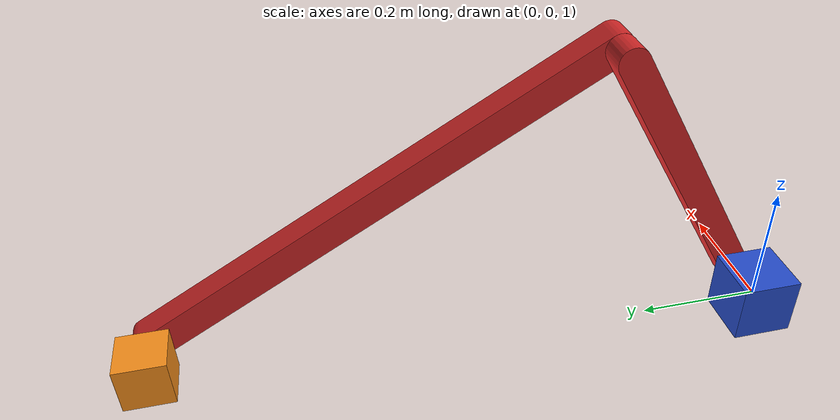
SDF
<sdf version='1.7'>
  <model name='SliderCrank'>
    <joint name='fixed' type='fixed'>
      <pose relative_to='__model__'>0 0 1 1.5708 -0 1.5708</pose>
      <parent>world</parent>
      <child>SC_base</child>
    </joint>
    <link name='SC_base'>
      <pose relative_to='fixed'>0 0 0 0 -0 0</pose>
      <inertial>
        <pose>0 0 0 0 -0 0</pose>
        <mass>1</mass>
        <inertia>
          <ixx>0.00166667</ixx>
          <ixy>0</ixy>
          <ixz>0</ixz>
          <iyy>0.00166667</iyy>
          <iyz>0</iyz>
          <izz>0.00166667</izz>
        </inertia>
      </inertial>
      <collision name='SC_base_collision'>
        <pose>0 0 0 0 -0 0</pose>
        <geometry>
          <box>
            <size>0.1 0.1 0.1</size>
          </box>
        </geometry>
        <surface>
          <contact>
            <ode/>
          </contact>
          <friction>
            <ode/>
          </friction>
        </surface>
      </collision>
      <visual name='SC_base_visual'>
        <pose>0 0 0 0 -0 0</pose>
        <geometry>
          <box>
            <size>0.1 0.1 0.1</size>
          </box>
        </geometry>
        <material>
          <script>
            <name>Gazebo/Blue</name>
            <uri>file://media/materials/scripts/gazebo.material</uri>
          </script>
        </material>
      </visual>
    </link>
    <joint name='REV01_Base_to_Lnik1' type='revolute'>
      <pose relative_to='SC_base'>0 0 0.075 0 0 -0.523599</pose>
      <parent>SC_base</parent>
      <child>SC_link1</child>
      <axis>
        <xyz>0 0 1</xyz>
        <limit>
          <lower>-1e+16</lower>
          <upper>1e+16</upper>
        </limit>
        <dynamics>
          <damping>0.7</damping>
          <friction>0</friction>
          <spring_reference>0</spring_reference>
          <spring_stiffness>0</spring_stiffness>
        </dynamics>
      </axis>
    </joint>
    <link name='SC_link1'>
      <pose relative_to='REV01_Base_to_Lnik1'>0 0 0 0 -0 0</pose>
      <inertial>
        <pose>0 0.25 0 0 -0 0</pose>
        <mass>1</mass>
        <inertia>
          <ixx>0.0254167</ixx>
          <ixy>0</ixy>
          <ixz>0</ixz>
          <iyy>0.000416667</iyy>
          <iyz>0</iyz>
          <izz>0.0254167</izz>
        </inertia>
      </inertial>
      <collision name='SC_link1_collision'>
        <pose>0 0.25 0 0 -0 0</pose>
        <geometry>
          <box>
            <size>0.05 0.55 0.05</size>
          </box>
        </geometry>
        <surface>
          <contact>
            <ode/>
          </contact>
          <friction>
            <ode>
              <mu>0.2</mu>
              <mu2>0.2</mu2>
            </ode>
          </friction>
        </surface>
      </collision>
      <visual name='SC_link1_visual'>
        <pose>0 0 0 0 -0 0</pose>
        <geometry>
          <mesh>
            <scale>1 1 1</scale>
            <uri>model://sc_description/meshes/SC_link1.stl</uri>
          </mesh>
        </geometry>
        <material>
          <script>
            <name>Gazebo/Red</name>
            <uri>file://media/materials/scripts/gazebo.material</uri>
          </script>
        </material>
      </visual>
    </link>
    <joint name='REV02_Lnik1_to_Lnik2' type='revolute'>
      <pose relative_to='SC_link1'>0 0.5 0.05 0 0 -1.5708</pose>
      <parent>SC_link1</parent>
      <child>SC_link2</child>
      <axis>
        <xyz>0 0 1</xyz>
        <limit>
          <lower>-1e+16</lower>
          <upper>1e+16</upper>
        </limit>
        <dynamics>
          <damping>0.7</damping>
          <friction>0</friction>
          <spring_reference>0</spring_reference>
          <spring_stiffness>0</spring_stiffness>
        </dynamics>
      </axis>
    </joint>
    <link name='SC_link2'>
      <pose relative_to='REV02_Lnik1_to_Lnik2'>0 0 0 0 -0 0</pose>
      <inertial>
        <pose>0 0.433013 0 0 -0 0</pose>
        <mass>1</mass>
        <inertia>
          <ixx>0.0701335</ixx>
          <ixy>0</ixy>
          <ixz>0</ixz>
          <iyy>0.000416667</iyy>
          <iyz>0</iyz>
          <izz>0.0701335</izz>
        </inertia>
      </inertial>
      <collision name='SC_link2_collision'>
        <pose>0 0.433013 0 0 -0 0</pose>
        <geometry>
          <box>
            <size>0.05 0.916025 0.05</size>
          </box>
        </geometry>
        <surface>
          <contact>
            <ode/>
          </contact>
          <friction>
            <ode>
              <mu>0.2</mu>
              <mu2>0.2</mu2>
            </ode>
          </friction>
        </surface>
      </collision>
      <visual name='SC_link2_visual'>
        <pose>0 0 0 0 -0 0</pose>
        <geometry>
          <mesh>
            <scale>1 1 1</scale>
            <uri>model://sc_description/meshes/SC_link2.stl</uri>
          </mesh>
        </geometry>
        <material>
          <script>
            <name>Gazebo/Red</name>
            <uri>file://media/materials/scripts/gazebo.material</uri>
          </script>
        </material>
      </visual>
    </link>
    <joint name='REV03_Lnik2_to_Piston' type='revolute'>
      <pose relative_to='SC_link2'>0 0.866025 -0.065 0 -0 2.0944</pose>
      <parent>SC_link2</parent>
      <child>SC_Piston</child>
      <axis>
        <xyz>0 0 1</xyz>
        <limit>
          <lower>-1e+16</lower>
          <upper>1e+16</upper>
        </limit>
        <dynamics>
          <damping>0.7</damping>
          <friction>0</friction>
          <spring_reference>0</spring_reference>
          <spring_stiffness>0</spring_stiffness>
        </dynamics>
      </axis>
    </joint>
    <link name='SC_Piston'>
      <pose relative_to='REV03_Lnik2_to_Piston'>0 0 0 0 -0 0</pose>
      <inertial>
        <pose>0 0 0 0 -0 0</pose>
        <mass>1</mass>
        <inertia>
          <ixx>0.00106667</ixx>
          <ixy>0</ixy>
          <ixz>0</ixz>
          <iyy>0.00106667</iyy>
          <iyz>0</iyz>
          <izz>0.00106667</izz>
        </inertia>
      </inertial>
      <collision name='SC_Piston_collision'>
        <pose>0 0 0 0 -0 0</pose>
        <geometry>
          <box>
            <size>0.08 0.08 0.08</size>
          </box>
        </geometry>
        <surface>
          <contact>
            <ode/>
          </contact>
          <friction>
            <ode>
              <mu>0.2</mu>
              <mu2>0.2</mu2>
            </ode>
          </friction>
        </surface>
      </collision>
      <visual name='SC_Piston_visual'>
        <pose>0 0 0 0 -0 0</pose>
        <geometry>
          <box>
            <size>0.08 0.08 0.08</size>
          </box>
        </geometry>
        <material>
          <script>
            <name>Gazebo/Orange</name>
            <uri>file://media/materials/scripts/gazebo.material</uri>
          </script>
        </material>
      </visual>
    </link>
    <plugin name='gazebo_ros_control' filename='libgazebo_ros_control.so'>
      <robotNamespace>/SliderCrank</robotNamespace>
      <robotSimType>gazebo_ros_control/DefaultRobotHWSim</robotSimType>
    </plugin>
    <static>0</static>
    <joint name='TRANS01_Base_to_Piston' type='prismatic'>
      <child>SC_Piston</child>
      <parent>SC_base</parent>
      <axis>
        <xyz>1 0 0</xyz>
        <limit>
          <lower>-2</lower>
          <upper>2</upper>
        </limit>
        <dynamics>
          <spring_reference>0</spring_reference>
          <spring_stiffness>0</spring_stiffness>
        </dynamics>
        <use_parent_model_frame>1</use_parent_model_frame>
      </axis>
      <origin rpy='0 0 0' xyz='1 0 0.065'/>
    </joint>
  </model>
</sdf>
